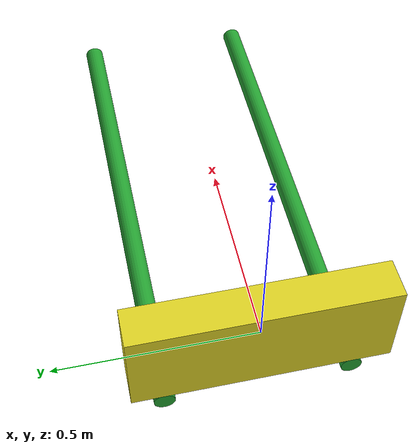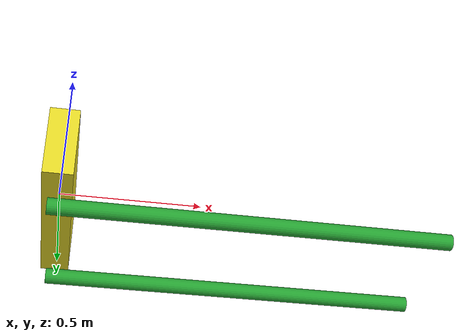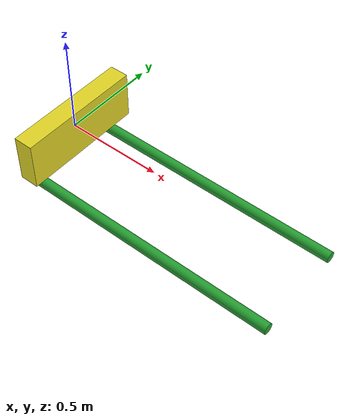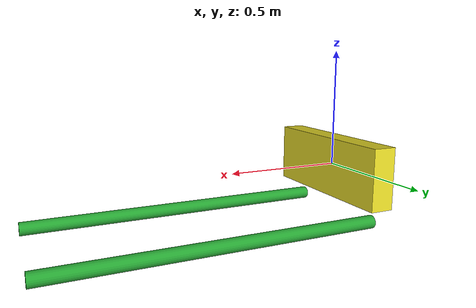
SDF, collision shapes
<?xml version="1.0" ?>

  <sdf version="1.5">
    <model name="tsduav_t4_old_link">

      <link name="link_base">
      <pose>0 0 0 0 0 0</pose>
      <inertial>
        <pose>0 0 0 0 0 0</pose>
        <mass>0.2</mass>
        <inertia>
          <ixx>0.01</ixx>
          <iyy>0.01</iyy>
          <izz>0.01</izz>
          <ixy>0</ixy>
          <ixz>0</ixz>
          <iyz>0</iyz>
        </inertia>
      </inertial>
      <collision name="link_base_collision">
        <pose>0 0 0 0 0 0</pose>
        <geometry>
          <box>
            <size>0.1 0.655  0.255</size>
          </box>
        </geometry>
        <surface>
          <contact>
            <ode>
              <max_vel>100.0</max_vel>
              <min_depth>0.001</min_depth>
            </ode>
          </contact>
          <friction>
            <ode>
              <mu>100000.0</mu>
              <mu2>100000.0</mu2>
            </ode>
          </friction>
        </surface>
      </collision>
      <visual name="link_base_visual">
        <geometry>
          <mesh>
            <uri>model://tsduav_t4_old_link/meshes/link_base.STL</uri>
          </mesh>
        </geometry>
        <material>
          <script>
            <name>Gazebo/Yellow</name>
          </script>
        </material>
      </visual>
    </link>
    <link name="link_pipe_1">
    <pose>-0.0 0.243 -0.1995 0 -1.5707963267948966 0</pose>
    <inertial>
      <pose>0 0 0 0 0 0</pose>
      <mass>0.5</mass>
      <inertia>
        <ixx>0.02</ixx>
        <iyy>0.03</iyy>
        <izz>0.01</izz>
        <ixy>0</ixy>
        <ixz>0</ixz>
        <iyz>0</iyz>
      </inertia>
    </inertial>
    <collision name="link_pipe_1_collision">
      <pose>0 0 -0.65 0 0 0</pose>
      <geometry>
        <cylinder>
          <length>1.35</length>
          <radius>0.0275</radius>
        </cylinder>
      </geometry>
      <surface>
        <contact>
          <ode>
            <max_vel>100.0</max_vel>
            <min_depth>0.001</min_depth>
          </ode>
        </contact>
        <friction>
          <ode>
            <mu>100000.0</mu>
            <mu2>100000.0</mu2>
          </ode>
        </friction>
      </surface>
    </collision>
    <visual name="link_pipe_1_visual">
      <geometry>
        <mesh>
          <uri>model://tsduav_t4_old_link/meshes/link_pipe.STL</uri>
        </mesh>
      </geometry>
      <material>
        <script>
          <name>Gazebo/Green</name>
        </script>
      </material>
    </visual>
  </link>
  <joint name='link_pipe_1_joint' type="revolute">
    <parent>link_base</parent>
    <child>link_pipe_1</child>
    <axis>
      <xyz>0 1 0</xyz>
      <limit>
        <lower>-1.5707963267948966</lower>
        <upper>1.5707963267948966</upper>
      </limit>
      <dynamics>
        <damping>0.00001</damping>
      </dynamics>
      <use_parent_model_frame>1</use_parent_model_frame>
    </axis>
  </joint>

  <link name="link_pipe_2">
  <pose>-0.0 -0.243 -0.1995 0 -1.5707963267948966 0</pose>
  <inertial>
    <pose>0 0 0 0 0 0</pose>
    <mass>0.5</mass>
    <inertia>
      <ixx>0.02</ixx>
      <iyy>0.03</iyy>
      <izz>0.01</izz>
      <ixy>0</ixy>
      <ixz>0</ixz>
      <iyz>0</iyz>
    </inertia>
  </inertial>
  <collision name="link_pipe_2_collision">
    <pose>0 0 -0.65 0 0 0</pose>
    <geometry>
      <cylinder>
        <length>1.35</length>
        <radius>0.0275</radius>
      </cylinder>
    </geometry>
    <surface>
      <contact>
        <ode>
          <max_vel>100.0</max_vel>
          <min_depth>0.001</min_depth>
        </ode>
      </contact>
      <friction>
        <ode>
          <mu>100000.0</mu>
          <mu2>100000.0</mu2>
        </ode>
      </friction>
    </surface>
  </collision>
  <visual name="link_pipe_2_visual">
    <geometry>
      <mesh>
        <uri>model://tsduav_t4_old_link/meshes/link_pipe.STL</uri>
      </mesh>
    </geometry>
    <material>
      <script>
        <name>Gazebo/Green</name>
      </script>
    </material>
  </visual>
</link>
<joint name='link_pipe_2_joint' type="revolute">
  <parent>link_base</parent>
  <child>link_pipe_2</child>
  <axis>
    <xyz>0 1 0</xyz>
    <limit>
      <lower>-1.5707963267948966</lower>
      <upper>1.5707963267948966</upper>
    </limit>
    <dynamics>
      <damping>0.00001</damping>
    </dynamics>
    <use_parent_model_frame>1</use_parent_model_frame>
  </axis>
</joint>
</model>
</sdf>
